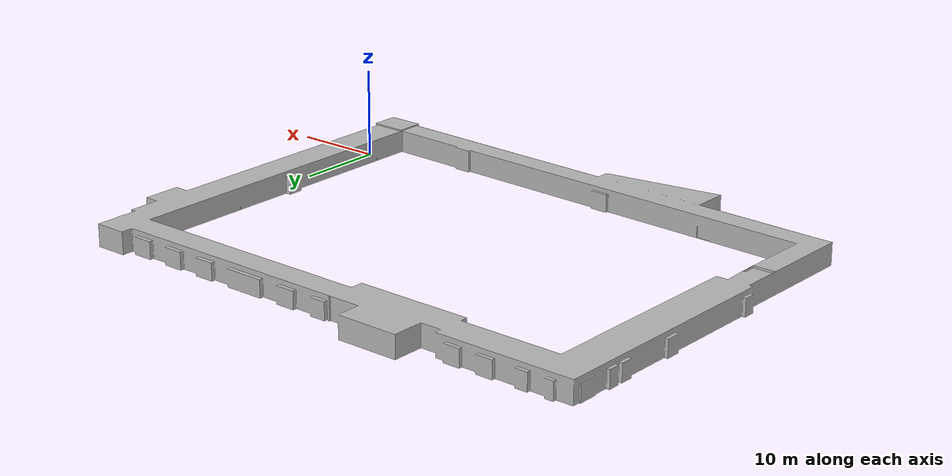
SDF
<?xml version="1.0"?>
<sdf version='1.4'>
  <world name='default'>
    <light name='sun' type='directional'>
      <cast_shadows>1</cast_shadows>
      <pose>0 0 10 0 -0 0</pose>
      <diffuse>0.8 0.8 0.8 1</diffuse>
      <specular>0.2 0.2 0.2 1</specular>
      <attenuation>
        <range>1000</range>
        <constant>0.9</constant>
        <linear>0.1</linear>
        <quadratic>0.001</quadratic>
      </attenuation>
      <direction>-0.5 0.1 -0.9</direction>
    </light>
    <include><uri>model://esat_corridor_v3</uri></include>
    <physics type='ode'>
      <max_step_size>0.001</max_step_size>
      <real_time_update_rate>1000</real_time_update_rate>
      <gravity>0 0 -9.8</gravity>
    </physics>
    <scene>
      <ambient>0.1 0.1 0.1 1</ambient>
      <background>0.1 0.1 0.1 1</background>
      <shadows>0</shadows>
    </scene>
    <spherical_coordinates>
      <surface_model>EARTH_WGS84</surface_model>
      <latitude_deg>0</latitude_deg>
      <longitude_deg>0</longitude_deg>
      <elevation>0</elevation>
      <heading_deg>0</heading_deg>
    </spherical_coordinates>
    <gui fullscreen='0'>
      <camera name='user_camera'>
        <pose>-30 -35 51.15 0 0.788 1.57</pose>
        <view_controller>orbit</view_controller>
      </camera>
    </gui>
    <light name='lightball' type='diffuse'>
      <cast_shadows>1</cast_shadows>
      <diffuse>0.8 0.8 0.8 1</diffuse>
      <attenuation>
        <range>1000</range>
        <constant>0.3</constant>
        <linear>0.1</linear>
        <quadratic>0.001</quadratic>
      </attenuation>
      <direction>-0.5 0.1 -0.9</direction>
      <pose>0 0 2 0 -0 0</pose>
    </light>
    <light name='lightball2' type='diffuse'>
      <cast_shadows>1</cast_shadows>
      <diffuse>0.8 0.8 0.8 1</diffuse>
      <attenuation>
        <range>1000</range>
        <constant>0.3</constant>
        <linear>0.1</linear>
        <quadratic>0.001</quadratic>
      </attenuation>
      <direction>-0.5 0.1 -0.9</direction>
      <pose>0 12 2 2 -0 0</pose>
    </light>
    <light name='lightball2b' type='diffuse'>
      <cast_shadows>1</cast_shadows>
      <diffuse>0.8 0.8 0.8 1</diffuse>
      <attenuation>
        <range>1000</range>
        <constant>0.3</constant>
        <linear>0.1</linear>
        <quadratic>0.001</quadratic>
      </attenuation>
      <direction>0.5 -0.1 0.9</direction>
      <pose>0 24 1.5 2 -0 0</pose>
    </light>
    <light name='lightball2a' type='diffuse'>
      <cast_shadows>1</cast_shadows>
      <diffuse>0.8 0.8 0.8 1</diffuse>
      <attenuation>
        <range>1000</range>
        <constant>0.3</constant>
        <linear>0.1</linear>
        <quadratic>0.001</quadratic>
      </attenuation>
      <direction>-0.5 0.1 -0.9</direction>
      <pose>0 36 2 0 -0 0</pose>
    </light>
    <light name='lightball3' type='diffuse'>
      <cast_shadows>1</cast_shadows>
      <diffuse>0.8 0.8 0.8 1</diffuse>
      <attenuation>
        <range>1000</range>
        <constant>0.3</constant>
        <linear>0.1</linear>
        <quadratic>0.001</quadratic>
      </attenuation>
      <direction>0 0 0</direction>
      <pose>-5 37 1.5 0 -0 0</pose>
    </light>
    <light name='lightball3a' type='diffuse'>
      <cast_shadows>1</cast_shadows>
      <diffuse>0.8 0.8 0.8 1</diffuse>
      <attenuation>
        <range>1000</range>
        <constant>0.3</constant>
        <linear>0.1</linear>
        <quadratic>0.001</quadratic>
      </attenuation>
      <direction>0.5 0.1 0.9</direction>
      <pose>-15 37 1.5 0 -0 -0.</pose>
    </light>
    <light name='lightball3b' type='diffuse'>
      <cast_shadows>1</cast_shadows>
      <diffuse>0.8 0.8 0.8 1</diffuse>
      <attenuation>
        <range>1000</range>
        <constant>0.3</constant>
        <linear>0.1</linear>
        <quadratic>0.001</quadratic>
      </attenuation>
      <direction>-0.5 0.1 -0.9</direction>
      <pose>-23 37 1.5 0 -0 0</pose>
    </light>
    <light name='lightball3c' type='diffuse'>
      <cast_shadows>1</cast_shadows>
      <diffuse>0.8 0.8 0.8 1</diffuse>
      <attenuation>
        <range>1000</range>
        <constant>0.3</constant>
        <linear>0.1</linear>
        <quadratic>0.001</quadratic>
      </attenuation>
      <direction>0.5 0.1 -0.9</direction>
      <pose>-10 37 1.5 0 -0.5 0.8</pose>
    </light>
    <light name='lightball4' type='diffuse'>
      <cast_shadows>1</cast_shadows>
      <diffuse>0.8 0.8 0.8 1</diffuse>
      <attenuation>
        <range>1000</range>
        <constant>0.3</constant>
        <linear>0.1</linear>
        <quadratic>0.001</quadratic>
      </attenuation>
      <direction>-0.5 0.1 -0.9</direction>
      <pose>-31 36 2 0 -0 0</pose>
    </light>
    <light name='lightball4a' type='diffuse'>
      <cast_shadows>1</cast_shadows>
      <diffuse>0.8 0.8 0.8 1</diffuse>
      <attenuation>
        <range>1000</range>
        <constant>0.3</constant>
        <linear>0.1</linear>
        <quadratic>0.001</quadratic>
      </attenuation>
      <direction>-0.5 0.1 -0.9</direction>
      <pose>-37 36 2 0 -0 0</pose>
    </light>
    <light name='lightball4b' type='diffuse'>
      <cast_shadows>1</cast_shadows>
      <diffuse>0.8 0.8 0.8 1</diffuse>
      <attenuation>
        <range>1000</range>
        <constant>0.3</constant>
        <linear>0.1</linear>
        <quadratic>0.001</quadratic>
      </attenuation>
      <direction>-0.5 0.1 -0.9</direction>
      <pose>-45 36 2 0 -0 0</pose>
    </light>
    <light name='lightball5' type='diffuse'>
      <cast_shadows>1</cast_shadows>
      <diffuse>0.8 0.8 0.8 1</diffuse>
      <attenuation>
        <range>1000</range>
        <constant>0.9</constant>
        <linear>0.1</linear>
        <quadratic>0.001</quadratic>
      </attenuation>
      <direction>-0.5 0.1 -0.9</direction>
      <pose>-55 36 2 0 -0 0</pose>
    </light>
    <light name='lightball5a' type='diffuse'>
      <cast_shadows>1</cast_shadows>
      <diffuse>0.8 0.8 0.8 1</diffuse>
      <attenuation>
        <range>1000</range>
        <constant>0.9</constant>
        <linear>0.1</linear>
        <quadratic>0.001</quadratic>
      </attenuation>
      <direction>-0.5 0.1 -0.9</direction>
      <pose>-56 24 2 0 -0 0</pose>
    </light>
    <light name='lightball5b' type='diffuse'>
      <cast_shadows>1</cast_shadows>
      <diffuse>0.8 0.8 0.8 1</diffuse>
      <attenuation>
        <range>1000</range>
        <constant>0.9</constant>
        <linear>0.1</linear>
        <quadratic>0.001</quadratic>
      </attenuation>
      <direction>-0.5 0.1 -0.9</direction>
      <pose>-57 12 2 0 -0 0</pose>
    </light>
    <light name='lightball6a' type='diffuse'>
      <cast_shadows>1</cast_shadows>
      <diffuse>0.8 0.8 0.8 1</diffuse>
      <attenuation>
        <range>1000</range>
        <constant>0.9</constant>
        <linear>0.1</linear>
        <quadratic>0.001</quadratic>
      </attenuation>
      <direction>-0.5 0.1 -0.9</direction>
      <pose>-57 7 2 0 -0 0</pose>
    </light>
    <light name='lightball6b' type='diffuse'>
      <cast_shadows>1</cast_shadows>
      <diffuse>0.8 0.8 0.8 1</diffuse>
      <attenuation>
        <range>1000</range>
        <constant>0.9</constant>
        <linear>0.1</linear>
        <quadratic>0.001</quadratic>
      </attenuation>
      <direction>-0.5 0.1 -0.9</direction>
      <pose>-57 3 2 0 -0 0</pose>
    </light>
    <light name='lightball6c' type='diffuse'>
      <cast_shadows>1</cast_shadows>
      <diffuse>0.8 0.8 0.8 1</diffuse>
      <attenuation>
        <range>1000</range>
        <constant>0.9</constant>
        <linear>0.1</linear>
        <quadratic>0.001</quadratic>
      </attenuation>
      <direction>-0.5 0.1 -0.9</direction>
      <pose>-57 0 2 0 -0 0</pose>
    </light>
    <light name='lightball6d' type='diffuse'>
      <cast_shadows>1</cast_shadows>
      <diffuse>0.8 0.8 0.8 1</diffuse>
      <attenuation>
        <range>1000</range>
        <constant>0.9</constant>
        <linear>0.1</linear>
        <quadratic>0.001</quadratic>
      </attenuation>
      <direction>-0.5 0.1 -0.9</direction>
      <pose>-57 -2 2 0 -0 0</pose>
    </light>
    <light name='lightball7a' type='diffuse'>
      <cast_shadows>1</cast_shadows>
      <diffuse>0.8 0.8 0.8 1</diffuse>
      <attenuation>
        <range>1000</range>
        <constant>0.9</constant>
        <linear>0.1</linear>
        <quadratic>0.001</quadratic>
      </attenuation>
      <direction>-0.5 0.1 -0.9</direction>
      <pose>-53 -3.5 2 0 -0 0</pose>
    </light>
    <light name='lightball7b' type='diffuse'>
      <cast_shadows>1</cast_shadows>
      <diffuse>0.8 0.8 0.8 1</diffuse>
      <attenuation>
        <range>1000</range>
        <constant>0.9</constant>
        <linear>0.1</linear>
        <quadratic>0.001</quadratic>
      </attenuation>
      <direction>-0.5 0.1 -0.9</direction>
      <pose>-50 -3.5 2 0 -0 0</pose>
    </light>
    <light name='lightball7c' type='diffuse'>
      <cast_shadows>1</cast_shadows>
      <diffuse>0.8 0.8 0.8 1</diffuse>
      <attenuation>
        <range>1000</range>
        <constant>0.9</constant>
        <linear>0.1</linear>
        <quadratic>0.001</quadratic>
      </attenuation>
      <direction>-0.5 0.1 -0.9</direction>
      <pose>-47 -3.5 2 0 -0 0</pose>
    </light>
    <light name='lightball7d' type='diffuse'>
      <cast_shadows>1</cast_shadows>
      <diffuse>0.8 0.8 0.8 1</diffuse>
      <attenuation>
        <range>1000</range>
        <constant>0.9</constant>
        <linear>0.1</linear>
        <quadratic>0.001</quadratic>
      </attenuation>
      <direction>-0.5 0.1 -0.9</direction>
      <pose>-44 -3.5 2 0 -0 0</pose>
    </light>
    <light name='lightball7e' type='diffuse'>
      <cast_shadows>1</cast_shadows>
      <diffuse>0.8 0.8 0.8 1</diffuse>
      <attenuation>
        <range>1000</range>
        <constant>0.9</constant>
        <linear>0.1</linear>
        <quadratic>0.001</quadratic>
      </attenuation>
      <direction>-0.5 0.1 -0.9</direction>
      <pose>-40 -3.5 2 0 -0 0</pose>
    </light>
    <light name='lightball7f' type='diffuse'>
      <cast_shadows>1</cast_shadows>
      <diffuse>0.8 0.8 0.8 1</diffuse>
      <attenuation>
        <range>1000</range>
        <constant>0.9</constant>
        <linear>0.1</linear>
        <quadratic>0.001</quadratic>
      </attenuation>
      <direction>-0.5 0.1 -0.9</direction>
      <pose>-37 -3.5 2 0 -0 0</pose>
    </light>
    <light name='lightball7g' type='diffuse'>
      <cast_shadows>1</cast_shadows>
      <diffuse>0.8 0.8 0.8 1</diffuse>
      <attenuation>
        <range>1000</range>
        <constant>0.9</constant>
        <linear>0.1</linear>
        <quadratic>0.001</quadratic>
      </attenuation>
      <direction>-0.5 0.1 -0.9</direction>
      <pose>-34 -3.6 2 0 -0 0</pose>
    </light>
    <light name='lightball8a' type='diffuse'>
      <cast_shadows>1</cast_shadows>
      <diffuse>0.8 0.8 0.8 1</diffuse>
      <attenuation>
        <range>1000</range>
        <constant>0.9</constant>
        <linear>0.1</linear>
        <quadratic>0.001</quadratic>
      </attenuation>
      <direction>-0.5 0.1 -0.9</direction>
      <pose>-30 -3.78 2 0 -0 0</pose>
    </light>
    <light name='lightball8b' type='diffuse'>
      <cast_shadows>1</cast_shadows>
      <diffuse>0.8 0.8 0.8 1</diffuse>
      <attenuation>
        <range>1000</range>
        <constant>0.9</constant>
        <linear>0.1</linear>
        <quadratic>0.001</quadratic>
      </attenuation>
      <direction>-0.5 0.1 -0.9</direction>
      <pose>-27 -3.92 2 0 -0 0</pose>
    </light>
    <light name='lightball8c' type='diffuse'>
      <cast_shadows>1</cast_shadows>
      <diffuse>0.8 0.8 0.8 1</diffuse>
      <attenuation>
        <range>1000</range>
        <constant>0.9</constant>
        <linear>0.1</linear>
        <quadratic>0.001</quadratic>
      </attenuation>
      <direction>-0.5 0.1 -0.9</direction>
      <pose>-24 -4.06 2 0 -0 0</pose>
    </light>
    <light name='lightball8d' type='diffuse'>
      <cast_shadows>1</cast_shadows>
      <diffuse>0.8 0.8 0.8 1</diffuse>
      <attenuation>
        <range>1000</range>
        <constant>0.9</constant>
        <linear>0.1</linear>
        <quadratic>0.001</quadratic>
      </attenuation>
      <direction>-0.5 0.1 -0.9</direction>
      <pose>-20 -4.2 2 0 -0 0</pose>
    </light>
    <light name='lightball9a' type='diffuse'>
      <cast_shadows>1</cast_shadows>
      <diffuse>0.8 0.8 0.8 1</diffuse>
      <attenuation>
        <range>1000</range>
        <constant>0.9</constant>
        <linear>0.1</linear>
        <quadratic>0.001</quadratic>
      </attenuation>
      <direction>-0.5 0.1 -0.9</direction>
      <pose>-17 -4.34 2 0 -0 0</pose>
    </light>
    <light name='lightball9b' type='diffuse'>
      <cast_shadows>1</cast_shadows>
      <diffuse>0.8 0.8 0.8 1</diffuse>
      <attenuation>
        <range>1000</range>
        <constant>0.9</constant>
        <linear>0.1</linear>
        <quadratic>0.001</quadratic>
      </attenuation>
      <direction>-0.5 0.1 -0.9</direction>
      <pose>-14 -4.48 2 0 -0 0</pose>
    </light>
    <light name='lightball9c' type='diffuse'>
      <cast_shadows>1</cast_shadows>
      <diffuse>0.8 0.8 0.8 1</diffuse>
      <attenuation>
        <range>1000</range>
        <constant>0.9</constant>
        <linear>0.1</linear>
        <quadratic>0.001</quadratic>
      </attenuation>
      <direction>-0.5 0.1 -0.9</direction>
      <pose>-10 -4.62 2 0 -0 0</pose>
    </light>
    <light name='lightball9d' type='diffuse'>
      <cast_shadows>1</cast_shadows>
      <diffuse>0.8 0.8 0.8 1</diffuse>
      <attenuation>
        <range>1000</range>
        <constant>0.9</constant>
        <linear>0.1</linear>
        <quadratic>0.001</quadratic>
      </attenuation>
      <direction>-0.5 0.1 -0.9</direction>
      <pose>-7 -4.76 2 0 -0 0</pose>
    </light>
    <light name='lightball9e' type='diffuse'>
      <cast_shadows>1</cast_shadows>
      <diffuse>0.8 0.8 0.8 1</diffuse>
      <attenuation>
        <range>1000</range>
        <constant>0.9</constant>
        <linear>0.1</linear>
        <quadratic>0.001</quadratic>
      </attenuation>
      <direction>-0.5 0.1 -0.9</direction>
      <pose>-4 -4.9 2 0 -0 0</pose>
    </light>
    <light name='lightball9f' type='diffuse'>
      <cast_shadows>1</cast_shadows>
      <diffuse>0.8 0.8 0.8 1</diffuse>
      <attenuation>
        <range>1000</range>
        <constant>0.9</constant>
        <linear>0.1</linear>
        <quadratic>0.001</quadratic>
      </attenuation>
      <direction>-0.5 0.1 -0.9</direction>
      <pose>-1 -5.1 2 0 -0 0</pose>
    </light>
  </world>
</sdf>

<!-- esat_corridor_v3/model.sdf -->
<sdf version='1.4'>
  <model name='esat_corridor_v3'>
    <pose>-41 11 0  0 0 3.14</pose>
      <static>1</static>
      <link name='body'>
        <visual name='visual'>
          <geometry>
            <mesh>
              <uri>model://esat_corridor_v3/esat_round.dae</uri>
            </mesh>
          </geometry>
        </visual>
        <collision name='collision'>
          <geometry>
            <mesh>
              <uri>model://esat_corridor_v3/esat_round.dae</uri>
            </mesh>
          </geometry>
          <max_contacts>10000</max_contacts>
          <surface>
            <bounce/>
            <friction>
              <ode/>
            </friction>
            <contact>
              <ode/>
            </contact>
          </surface>
        </collision>
        <velocity_decay>
          <linear>0</linear>
          <angular>0</angular>
        </velocity_decay>
        <self_collide>0</self_collide>
        <kinematic>0</kinematic>
        <gravity>1</gravity>
      </link>
    </model>
</sdf>
